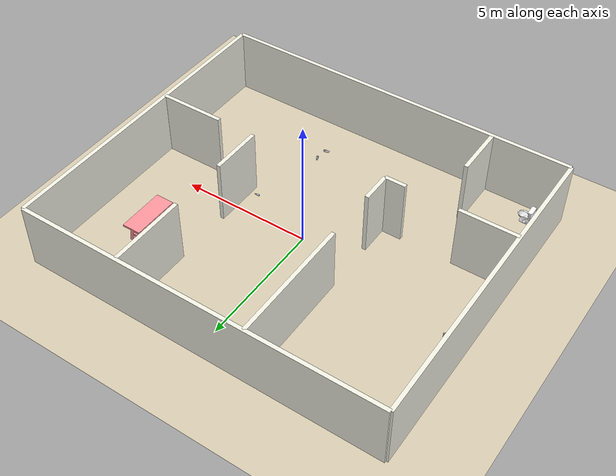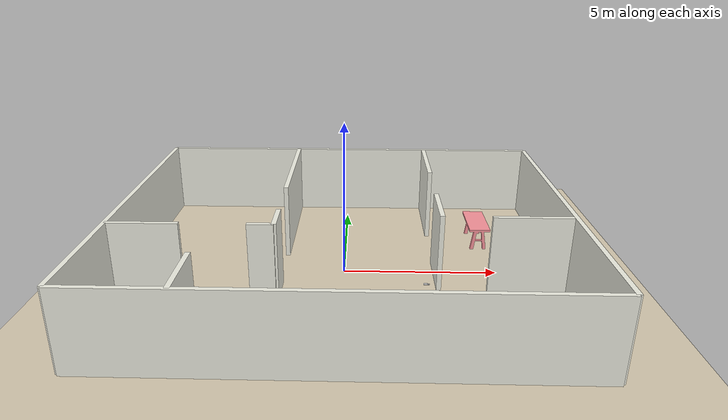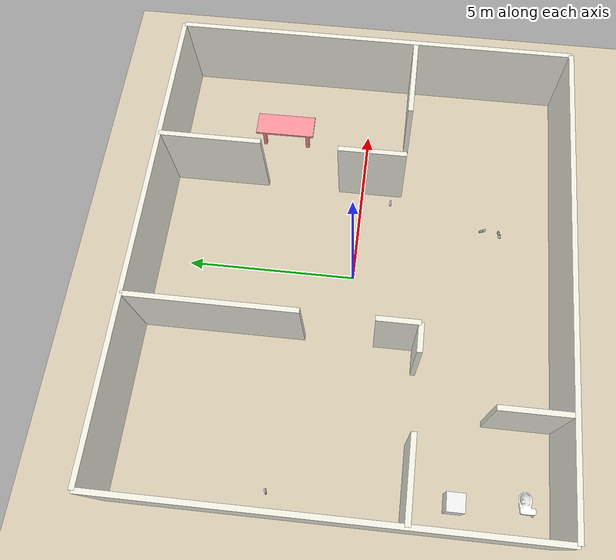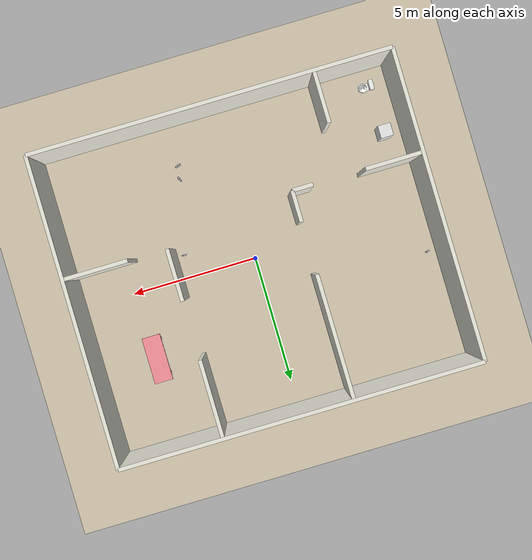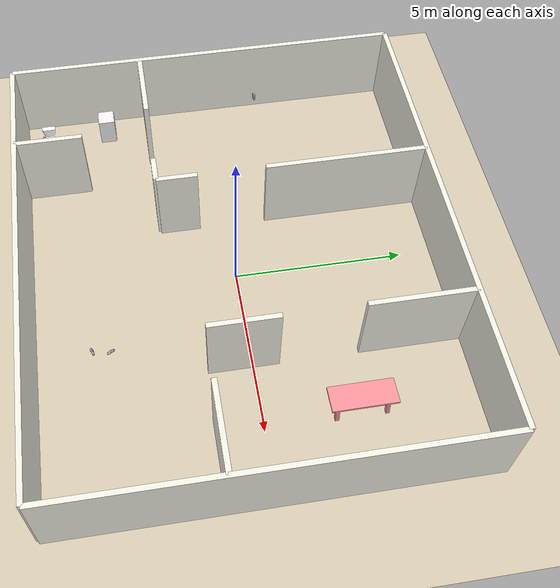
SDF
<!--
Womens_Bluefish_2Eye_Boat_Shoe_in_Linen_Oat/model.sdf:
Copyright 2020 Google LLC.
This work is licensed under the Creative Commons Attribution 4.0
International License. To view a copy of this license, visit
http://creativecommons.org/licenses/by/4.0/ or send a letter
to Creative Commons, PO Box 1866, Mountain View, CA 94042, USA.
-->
<sdf version="1.10">
 <world name="simple_room">
  <gravity>0 0 -9.8000000000000007</gravity>
  <magnetic_field>6.0000000000000002e-06 2.3e-05 -4.1999999999999998e-05</magnetic_field>
  <atmosphere type="adiabatic"/>
  <physics name="default_physics" default="false" type="ode">
   <max_step_size>0.001</max_step_size>
   <real_time_factor>1</real_time_factor>
   <real_time_update_rate>1000</real_time_update_rate>
  </physics>
  <scene>
   <ambient>0.5 0.5 0.5 1</ambient>
   <background>0.699999988 0.699999988 0.699999988 1</background>
   <shadows>false</shadows>
   <grid>false</grid>
   <origin_visual>false</origin_visual>
  </scene>
  <model name="ground_plane">
   <static>true</static>
   <link name="link">
    <collision name="collision">
     <geometry><plane><normal>0 0 1</normal><size>1 1</size></plane></geometry>
    </collision>
    <visual name="visual">
     <geometry><plane><normal>0 0 1</normal><size>100 100</size></plane></geometry>
     <material>
      <ambient>0.850000024 0.800000012 0.699999988 1</ambient>
      <diffuse>0.850000024 0.800000012 0.699999988 1</diffuse>
     </material>
    </visual>
    <inertial>
     <mass>1</mass>
     <inertia><ixx>1</ixx><ixy>0</ixy><ixz>0</ixz><iyy>1</iyy><iyz>0</iyz><izz>1</izz></inertia>
    </inertial>
   </link>
  </model>
  <model name="wall_north">
   <static>true</static>
   <pose>0 6 1.25 0 0 0</pose>
   <link name="link">
    <collision name="collision">
     <geometry><box><size>14 0.14999999999999999 2.5</size></box></geometry>
    </collision>
    <visual name="visual">
     <geometry><box><size>14 0.14999999999999999 2.5</size></box></geometry>
     <material>
      <ambient>0.949999988 0.949999988 0.899999976 1</ambient>
      <diffuse>0.949999988 0.949999988 0.899999976 1</diffuse>
     </material>
    </visual>
    <inertial>
     <mass>1</mass>
     <inertia><ixx>1</ixx><ixy>0</ixy><ixz>0</ixz><iyy>1</iyy><iyz>0</iyz><izz>1</izz></inertia>
    </inertial>
   </link>
  </model>
  <model name="wall_south">
   <static>true</static>
   <pose>0 -6 1.25 0 0 0</pose>
   <link name="link">
    <collision name="collision">
     <geometry><box><size>14 0.14999999999999999 2.5</size></box></geometry>
    </collision>
    <visual name="visual">
     <geometry><box><size>14 0.14999999999999999 2.5</size></box></geometry>
     <material>
      <ambient>0.949999988 0.949999988 0.899999976 1</ambient>
      <diffuse>0.949999988 0.949999988 0.899999976 1</diffuse>
     </material>
    </visual>
    <inertial>
     <mass>1</mass>
     <inertia><ixx>1</ixx><ixy>0</ixy><ixz>0</ixz><iyy>1</iyy><iyz>0</iyz><izz>1</izz></inertia>
    </inertial>
   </link>
  </model>
  <model name="wall_east">
   <static>true</static>
   <pose>7 0 1.25 0 0 0</pose>
   <link name="link">
    <collision name="collision">
     <geometry><box><size>0.14999999999999999 12 2.5</size></box></geometry>
    </collision>
    <visual name="visual">
     <geometry><box><size>0.14999999999999999 12 2.5</size></box></geometry>
     <material>
      <ambient>0.949999988 0.949999988 0.899999976 1</ambient>
      <diffuse>0.949999988 0.949999988 0.899999976 1</diffuse>
     </material>
    </visual>
    <inertial>
     <mass>1</mass>
     <inertia><ixx>1</ixx><ixy>0</ixy><ixz>0</ixz><iyy>1</iyy><iyz>0</iyz><izz>1</izz></inertia>
    </inertial>
   </link>
  </model>
  <model name="wall_west">
   <static>true</static>
   <pose>-7 0 1.25 0 0 0</pose>
   <link name="link">
    <collision name="collision">
     <geometry><box><size>0.14999999999999999 12 2.5</size></box></geometry>
    </collision>
    <visual name="visual">
     <geometry><box><size>0.14999999999999999 12 2.5</size></box></geometry>
     <material>
      <ambient>0.949999988 0.949999988 0.899999976 1</ambient>
      <diffuse>0.949999988 0.949999988 0.899999976 1</diffuse>
     </material>
    </visual>
    <inertial>
     <mass>1</mass>
     <inertia><ixx>1</ixx><ixy>0</ixy><ixz>0</ixz><iyy>1</iyy><iyz>0</iyz><izz>1</izz></inertia>
    </inertial>
   </link>
  </model>
  <model name="wall_bedroom_east_north">
   <static>true</static>
   <pose>-2 3.6000000000000001 1.25 0 0 0</pose>
   <link name="link">
    <collision name="collision">
     <geometry><box><size>0.14999999999999999 4.7999999999999998 2.5</size></box></geometry>
    </collision>
    <visual name="visual">
     <geometry><box><size>0.14999999999999999 4.7999999999999998 2.5</size></box></geometry>
     <material>
      <ambient>0.949999988 0.949999988 0.899999976 1</ambient>
      <diffuse>0.949999988 0.949999988 0.899999976 1</diffuse>
     </material>
    </visual>
    <inertial>
     <mass>1</mass>
     <inertia><ixx>1</ixx><ixy>0</ixy><ixz>0</ixz><iyy>1</iyy><iyz>0</iyz><izz>1</izz></inertia>
    </inertial>
   </link>
  </model>
  <model name="wall_bedroom_east_south">
   <static>true</static>
   <pose>-2 -1.3999999999999999 1.25 0 0 0</pose>
   <link name="link">
    <collision name="collision">
     <geometry><box><size>0.14999999999999999 1.2 2.5</size></box></geometry>
    </collision>
    <visual name="visual">
     <geometry><box><size>0.14999999999999999 1.2 2.5</size></box></geometry>
     <material>
      <ambient>0.949999988 0.949999988 0.899999976 1</ambient>
      <diffuse>0.949999988 0.949999988 0.899999976 1</diffuse>
     </material>
    </visual>
    <inertial>
     <mass>1</mass>
     <inertia><ixx>1</ixx><ixy>0</ixy><ixz>0</ixz><iyy>1</iyy><iyz>0</iyz><izz>1</izz></inertia>
    </inertial>
   </link>
  </model>
  <model name="wall_bedroom_south_left">
   <static>true</static>
   <pose>-5.9000000000000004 -2 1.25 0 0 0</pose>
   <link name="link">
    <collision name="collision">
     <geometry><box><size>2.2000000000000002 0.14999999999999999 2.5</size></box></geometry>
    </collision>
    <visual name="visual">
     <geometry><box><size>2.2000000000000002 0.14999999999999999 2.5</size></box></geometry>
     <material>
      <ambient>0.949999988 0.949999988 0.899999976 1</ambient>
      <diffuse>0.949999988 0.949999988 0.899999976 1</diffuse>
     </material>
    </visual>
    <inertial>
     <mass>1</mass>
     <inertia><ixx>1</ixx><ixy>0</ixy><ixz>0</ixz><iyy>1</iyy><iyz>0</iyz><izz>1</izz></inertia>
    </inertial>
   </link>
  </model>
  <model name="wall_bedroom_south_right">
   <static>true</static>
   <pose>-2.3999999999999999 -2 1.25 0 0 0</pose>
   <link name="link">
    <collision name="collision">
     <geometry><box><size>0.80000000000000004 0.14999999999999999 2.5</size></box></geometry>
    </collision>
    <visual name="visual">
     <geometry><box><size>0.80000000000000004 0.14999999999999999 2.5</size></box></geometry>
     <material>
      <ambient>0.949999988 0.949999988 0.899999976 1</ambient>
      <diffuse>0.949999988 0.949999988 0.899999976 1</diffuse>
     </material>
    </visual>
    <inertial>
     <mass>1</mass>
     <inertia><ixx>1</ixx><ixy>0</ixy><ixz>0</ixz><iyy>1</iyy><iyz>0</iyz><izz>1</izz></inertia>
    </inertial>
   </link>
  </model>
  <model name="wall_bathroom_east_lower">
   <static>true</static>
   <pose>-4 -5 1.25 0 0 0</pose>
   <link name="link">
    <collision name="collision"><geometry><box><size>0.14999999999999999 2 2.5</size></box></geometry></collision>
    <visual name="visual">
     <geometry><box><size>0.14999999999999999 2 2.5</size></box></geometry>
     <material>
      <ambient>0.949999988 0.949999988 0.899999976 1</ambient>
      <diffuse>0.949999988 0.949999988 0.899999976 1</diffuse>
     </material>
    </visual>
    <inertial>
     <mass>1</mass>
     <inertia><ixx>1</ixx><ixy>0</ixy><ixz>0</ixz><iyy>1</iyy><iyz>0</iyz><izz>1</izz></inertia>
    </inertial>
   </link>
  </model>
  <model name="wall_kitchen_west_upper">
   <static>true</static>
   <pose>3 4.5 1.25 0 0 0</pose>
   <link name="link">
    <collision name="collision"><geometry><box><size>0.14999999999999999 3 2.5</size></box></geometry></collision>
    <visual name="visual">
     <geometry><box><size>0.14999999999999999 3 2.5</size></box></geometry>
     <material>
      <ambient>0.949999988 0.949999988 0.899999976 1</ambient>
      <diffuse>0.949999988 0.949999988 0.899999976 1</diffuse>
     </material>
    </visual>
    <inertial>
     <mass>1</mass>
     <inertia><ixx>1</ixx><ixy>0</ixy><ixz>0</ixz><iyy>1</iyy><iyz>0</iyz><izz>1</izz></inertia>
    </inertial>
   </link>
  </model>
  <model name="wall_kitchen_west_lower">
   <static>true</static>
   <pose>3 -0.25 1.25 0 0 0</pose>
   <link name="link">
    <collision name="collision"><geometry><box><size>0.14999999999999999 2 2.5</size></box></geometry></collision>
    <visual name="visual">
     <geometry><box><size>0.14999999999999999 2 2.5</size></box></geometry>
     <material>
      <ambient>0.949999988 0.949999988 0.899999976 1</ambient>
      <diffuse>0.949999988 0.949999988 0.899999976 1</diffuse>
     </material>
    </visual>
    <inertial>
     <mass>1</mass>
     <inertia><ixx>1</ixx><ixy>0</ixy><ixz>0</ixz><iyy>1</iyy><iyz>0</iyz><izz>1</izz></inertia>
    </inertial>
   </link>
  </model>
  <model name="wall_kitchen_south">
   <static>true</static>
   <pose>5.75 -1.25 1.25 0 0 0</pose>
   <link name="link">
    <collision name="collision">
     <geometry><box><size>2.5 0.14999999999999999 2.5</size></box></geometry>
    </collision>
    <visual name="visual">
     <geometry><box><size>2.5 0.14999999999999999 2.5</size></box></geometry>
     <material>
      <ambient>0.949999988 0.949999988 0.899999976 1</ambient>
      <diffuse>0.949999988 0.949999988 0.899999976 1</diffuse>
     </material>
    </visual>
    <inertial>
     <mass>1</mass>
     <inertia><ixx>1</ixx><ixy>0</ixy><ixz>0</ixz><iyy>1</iyy><iyz>0</iyz><izz>1</izz></inertia>
    </inertial>
   </link>
  </model>
  <model name="KitchenTable_kitchen">
   <static>true</static>
   <include><uri>model://aws_robomaker_residential_KitchenTable_01</uri></include>
   <pose>4.7297203512687105 2.6525500424903932 -1.8329402257743901e-06 2.3484310001222227e-06 8.6842196738987665e-09 0.0031595549724049306</pose>
  </model>
  <model name="toilet_bathroom">
   <static>true</static>
   <include><uri>model://Standard Toilet</uri></include>
   <pose>-6.3279767036438006 -5.1998949050903311 0 0 0 1.5700000042340219</pose>
  </model>
  <model name="sink_bathroom">
   <static>true</static>
   <pose>-6.2133898735046387 -3.3060300350189209 0.44999998826144777 1.19201129687469e-22 -3.5705489438730971e-22 1.1574131579480487e-27</pose>
   <link name="link">
    <collision name="collision">
     <geometry><box><size>0.5 0.5 0.90000000000000002</size></box></geometry>
    </collision>
    <visual name="visual">
     <geometry><box><size>0.5 0.5 0.90000000000000002</size></box></geometry>
     <material>
      <ambient>0.949999988 0.949999988 0.949999988 1</ambient>
      <diffuse>0.949999988 0.949999988 0.949999988 1</diffuse>
     </material>
    </visual>
    <inertial>
     <mass>1</mass>
     <inertia><ixx>1</ixx><ixy>0</ixy><ixz>0</ixz><iyy>1</iyy><iyz>0</iyz><izz>1</izz></inertia>
    </inertial>
   </link>
  </model>
  <model name="Shoe_rack_1">
   <static>false</static>
   <include><uri>model://Womens_Bluefish_2Eye_Boat_Shoe_in_Linen_Oat</uri></include>
   <pose>1.9886495701817801 -3.8635445512976365 -6.5281626671697649e-05 -0.0030337355520972669 -0.0018047128029599257 0.50765159448959074</pose>
  </model>
  <model name="Shoe_rack_2">
   <static>false</static>
   <include><uri>model://Womens_Bluefish_2Eye_Boat_Shoe_in_Linen_Oat</uri></include>
   <pose>1.9006317438088089 -4.3807072031467822 -6.0252761952468017e-05 -0.0030463980970306887 -0.0011026965457465205 -1.1727424576933545</pose>
  </model>
  <model name="WaterBottle_floor_1">
   <static>false</static>
   <include><uri>model://simple_house/Weston_No_22_Cajun_Jerky_Tonic_12_fl_oz_nLj64ZnGwDh</uri></include>
   <pose>2.5642544319478673 -0.92183765905126236 0.031999985397382538 -5.8958843222686013e-23 1.5707963267948966 0</pose>
  </model>
  <model name="Book_on_desk">
   <static>false</static>
   <include>
    <uri>model://Eat_to_Live_The_Amazing_NutrientRich_Program_for_Fast_and_Sustained_Weight_Loss_Revised_Edition_Book</uri>
   </include>
   <pose>-6.4499980034299433 1.6200020258001826 0.74455605499589694 0.00024333305082485746 -0.0077585992161762676 0.30001295466484978</pose>
  </model>
  <light name="Bedroom_CeilingLight" type="point">
   <pose>-4.5 2 2.2999999999999998 0 0 0</pose>
   <cast_shadows>false</cast_shadows>
   <intensity>1</intensity>
   <direction>0 0 -1</direction>
   <diffuse>0.600000024 0.600000024 0.5 1</diffuse>
   <specular>0.100000001 0.100000001 0.100000001 1</specular>
   <attenuation>
    <range>20</range>
    <linear>0.01</linear>
    <constant>0.29999999999999999</constant>
    <quadratic>0.02</quadratic>
   </attenuation>
   <spot><inner_angle>0</inner_angle><outer_angle>0</outer_angle><falloff>0</falloff></spot>
  </light>
  <light name="LivingRoom_CeilingLight" type="point">
   <pose>0 3 2.2999999999999998 0 0 0</pose>
   <cast_shadows>false</cast_shadows>
   <intensity>1</intensity>
   <direction>0 0 -1</direction>
   <diffuse>0.600000024 0.600000024 0.5 1</diffuse>
   <specular>0.100000001 0.100000001 0.100000001 1</specular>
   <attenuation>
    <range>20</range>
    <linear>0.01</linear>
    <constant>0.29999999999999999</constant>
    <quadratic>0.02</quadratic>
   </attenuation>
   <spot><inner_angle>0</inner_angle><outer_angle>0</outer_angle><falloff>0</falloff></spot>
  </light>
  <light name="Kitchen_CeilingLight" type="point">
   <pose>5 3.5 2.2999999999999998 0 0 0</pose>
   <cast_shadows>false</cast_shadows>
   <intensity>1</intensity>
   <direction>0 0 -1</direction>
   <diffuse>0.699999988 0.699999988 0.600000024 1</diffuse>
   <specular>0.100000001 0.100000001 0.100000001 1</specular>
   <attenuation>
    <range>20</range>
    <linear>0.01</linear>
    <constant>0.29999999999999999</constant>
    <quadratic>0.02</quadratic>
   </attenuation>
   <spot><inner_angle>0</inner_angle><outer_angle>0</outer_angle><falloff>0</falloff></spot>
  </light>
  <light name="Bathroom_CeilingLight" type="point">
   <pose>-5.5 -4.7999999999999998 2.2999999999999998 0 0 0</pose>
   <cast_shadows>false</cast_shadows>
   <intensity>1</intensity>
   <direction>0 0 -1</direction>
   <diffuse>0.699999988 0.699999988 0.699999988 1</diffuse>
   <specular>0.100000001 0.100000001 0.100000001 1</specular>
   <attenuation>
    <range>15</range>
    <linear>0.02</linear>
    <constant>0.40000000000000002</constant>
    <quadratic>0.029999999999999999</quadratic>
   </attenuation>
   <spot><inner_angle>0</inner_angle><outer_angle>0</outer_angle><falloff>0</falloff></spot>
  </light>
  <light name="Entry_Light" type="point">
   <pose>1 -3 2.2999999999999998 0 0 0</pose>
   <cast_shadows>false</cast_shadows>
   <intensity>1</intensity>
   <direction>0 0 -1</direction>
   <diffuse>0.5 0.5 0.5 1</diffuse>
   <specular>0.100000001 0.100000001 0.100000001 1</specular>
   <attenuation>
    <range>15</range>
    <linear>0.02</linear>
    <constant>0.40000000000000002</constant>
    <quadratic>0.029999999999999999</quadratic>
   </attenuation>
   <spot><inner_angle>0</inner_angle><outer_angle>0</outer_angle><falloff>0</falloff></spot>
  </light>
 </world>
</sdf>

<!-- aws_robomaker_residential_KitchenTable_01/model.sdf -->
<sdf version="1.6">
  <model name="aws_robomaker_residential_KitchenTable_01">
    <link name="link">
      <inertial>
        <mass>12.3</mass>
        <inertia>
          <ixx>0.01</ixx>
          <ixy>0</ixy>
          <ixz>0</ixz>
          <iyy>0.01</iyy>
          <iyz>0</iyz>
          <izz>0.01</izz>
        </inertia>
      </inertial>
      <collision name="collision">
        <geometry>
          <mesh>
            <uri>model://aws_robomaker_residential_KitchenTable_01/meshes/aws_KitchenTable_01_collision.DAE</uri>
            <scale>1 1 1</scale>
          </mesh>
        </geometry>
      </collision>
      <visual name="visual">
        <geometry>
          <mesh>
            <uri>model://aws_robomaker_residential_KitchenTable_01/meshes/aws_KitchenTable_01_visual.DAE</uri>
          </mesh>
        </geometry>
        <meta>
          <layer> 1 </layer>
        </meta>
      </visual>
    </link>
  </model>
</sdf>

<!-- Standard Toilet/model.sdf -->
<sdf version="1.6">
  <model name="Toilet">
    <static>true</static>
    <link name="base_link">
      <visual name="visual">
        <geometry>
          <mesh>
            <uri>meshes/toilet.dae</uri>
          </mesh>
        </geometry>
        <material>
          <diffuse>1.0 1.0 1.0</diffuse>
          <specular>1.0 1.0 1.0</specular>
          <pbr>
            <metal>
              <albedo_map>materials/textures/Toilet_Albedo.png</albedo_map>
              <normal_map>materials/textures/Toilet_Normal.png</normal_map>
              <roughness_map>materials/textures/Toilet_Roughness.png</roughness_map>
            </metal>
          </pbr>
        </material>
      </visual>
      <collision name="Box001">
        <pose>0.0 1.16967 0.388813 0.0 0.0 -1.5708</pose>
        <geometry>
          <box>
            <size>0.0425444 1.52334 0.777627</size>
          </box>
        </geometry>
      </collision>
      <collision name="Box002">
        <pose>0.0 -0.0264773 0.143861 0.0 0.0 -1.5708</pose>
        <geometry>
          <box>
            <size>2.35526 1.55381 0.287722</size>
          </box>
        </geometry>
      </collision>
      <collision name="Box003">
        <pose>-0.00401034 0.897211 0.481077 1.5708 0.456787 -1.5708</pose>
        <geometry>
          <box>
            <size>0.60728 0.471611 1.48256</size>
          </box>
        </geometry>
      </collision>
      <collision name="Box004">
        <pose>0.123479 0.36017 0.264194 1.5708 -0.125019 -1.5708</pose>
        <geometry>
          <box>
            <size>0.60728 0.471611 1.99479</size>
          </box>
        </geometry>
      </collision>
      <collision name="Box005">
        <pose>0.163765 -0.521168 0.276162 0.0 0.0 -1.5708</pose>
        <geometry>
          <box>
            <size>1.3896 2.04844 0.399703</size>
          </box>
        </geometry>
      </collision>
    </link>
  </model>
</sdf>

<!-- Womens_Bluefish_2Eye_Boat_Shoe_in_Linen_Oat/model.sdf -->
<sdf version="1.6">
  <model name="Womens_Bluefish_2Eye_Boat_Shoe_in_Linen_Oat">
    <link name="link_0">
      <visual name="visual">
        <geometry>
          <mesh>
            <uri>meshes/model.obj</uri>
          </mesh>
        </geometry>
      </visual>
      <collision name="collision_0">
        <geometry>
          <mesh>
            <uri>meshes/model.obj</uri>
          </mesh>
        </geometry>
      </collision>
    </link>
  </model>
</sdf>

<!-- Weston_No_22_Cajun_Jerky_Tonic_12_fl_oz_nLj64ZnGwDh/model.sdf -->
<sdf version="1.6">
  <model name="Weston_No_22_Cajun_Jerky_Tonic_12_fl_oz_nLj64ZnGwDh">
    <link name="link_0">
      <pose>0 0 0.0995 0 0 0</pose>
      <inertial>
        <mass>0.2</mass>
        <inertia>
          <ixx>0.001</ixx>
          <ixy>0</ixy>
          <ixz>0</ixz>
          <iyy>0.001</iyy>
          <iyz>0</iyz>
          <izz>0.001</izz>
        </inertia>
      </inertial>
      <collision name="collision">
        <pose>0 0 0 0 0 0</pose>
        <geometry>
          <cylinder>
            <radius>0.032</radius>
            <length>0.199</length>
          </cylinder>
        </geometry>
        <surface>
          <friction>
            <ode>
              <mu>0.8</mu>
              <mu2>0.8</mu2>
            </ode>
          </friction>
          <contact>
            <ode>
              <kp>1000000</kp>
              <kd>100</kd>
              <max_vel>0.1</max_vel>
              <min_depth>0.001</min_depth>
            </ode>
          </contact>
          <bounce>
            <restitution_coefficient>0.0</restitution_coefficient>
            <threshold>0.0</threshold>
          </bounce>
        </surface>
      </collision>
      <visual name="visual">
        <pose>0 0 -0.0995 0 0 0</pose>
        <geometry>
          <mesh>
            <uri>meshes/model.obj</uri>
          </mesh>
        </geometry>
      </visual>
    </link>
  </model>
</sdf>

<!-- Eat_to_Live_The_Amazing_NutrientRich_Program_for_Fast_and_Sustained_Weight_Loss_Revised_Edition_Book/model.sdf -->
<sdf version="1.6">
  <model name="Eat_to_Live_The_Amazing_NutrientRich_Program_for_Fast_and_Sustained_Weight_Loss_Revised_Edition_Book">
    <link name="link_0">
      <visual name="visual">
        <geometry>
          <mesh>
            <uri>meshes/model.obj</uri>
          </mesh>
        </geometry>
      </visual>
      <collision name="collision_0">
        <geometry>
          <mesh>
            <uri>meshes/model.obj</uri>
          </mesh>
        </geometry>
      </collision>
    </link>
  </model>
</sdf>
